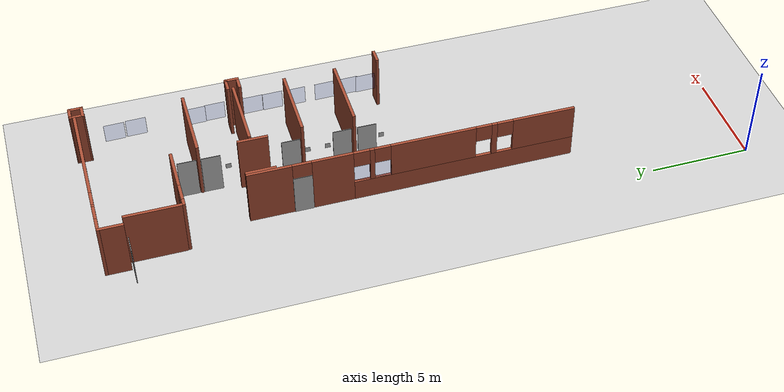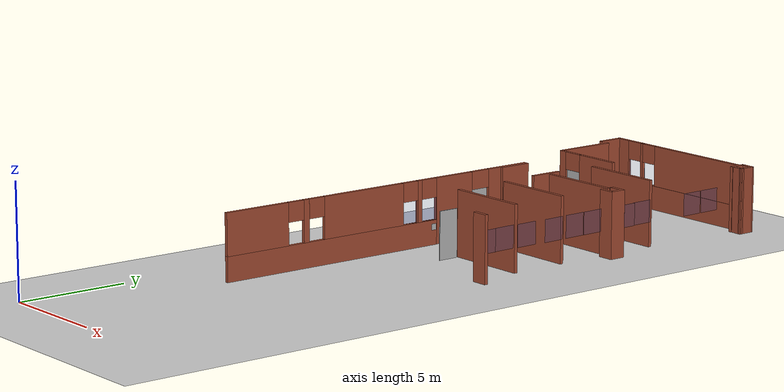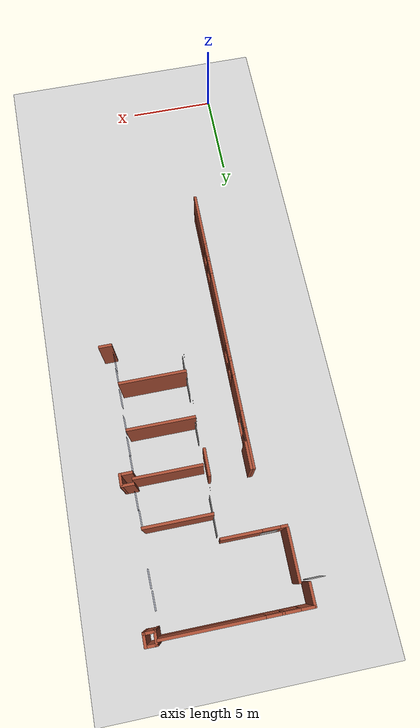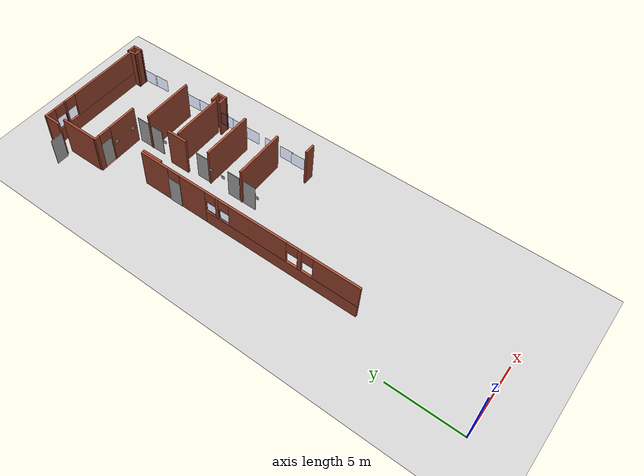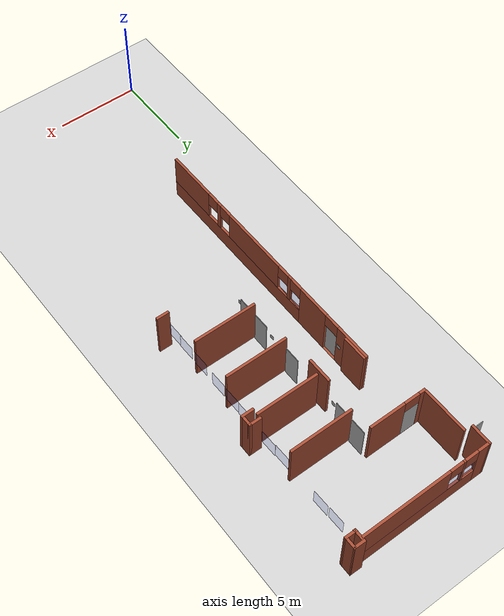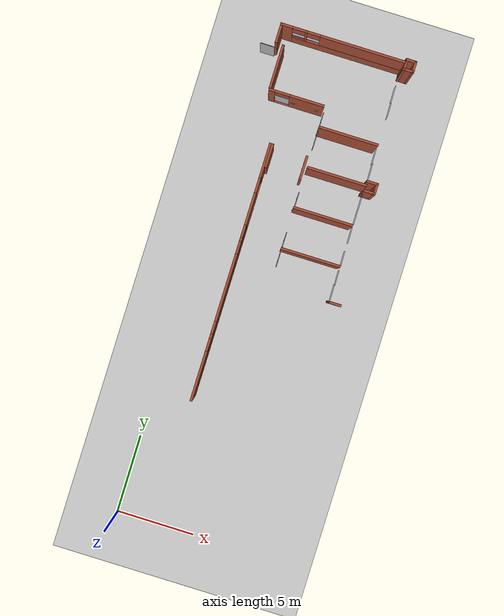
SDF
<sdf version="1.6">
 <world name="default">
  <model name="ground_plane">
   <static>1</static>
   <link name="link">
    <collision name="collision">
     <geometry><plane><normal>0 0 1</normal><size>100 100</size></plane></geometry>
     <surface><friction><ode><mu>100</mu><mu2>50</mu2></ode></friction></surface>
    </collision>
    <visual name="visual">
     <cast_shadows>0</cast_shadows>
     <geometry><plane><normal>0 0 1</normal><size>100 100</size></plane></geometry>
     <material>
      <script><uri>file://media/materials/scripts/gazebo.material</uri><name>Gazebo/Grey</name></script>
     </material>
    </visual>
   </link>
  </model>
  <model name="UNFRGS_INF_-_Predio_73">
   <pose>-0.02513 1.0401 -0.009 0 -0 0</pose>
   <link name="Wall_103">
    <collision name="Wall_103_Collision">
     <geometry><box><size>1.5 0.15 2.96</size></box></geometry>
     <pose>0 0 1.48 0 -0 0</pose>
    </collision>
    <visual name="Wall_103_Visual">
     <pose>0 0 1.48 0 -0 0</pose>
     <geometry><box><size>1.5 0.15 2.96</size></box></geometry>
     <material>
      <script><uri>file://media/materials/scripts/gazebo.material</uri><name>Gazebo/Bricks</name></script>
      <ambient>0.929412 1 0.760784 1</ambient>
     </material>
     <meta><layer>0</layer></meta>
    </visual>
    <pose>2.64587 22.8868 0 0 0 -1.5708</pose>
   </link>
   <link name="Wall_108">
    <collision name="Wall_108_Collision">
     <geometry><box><size>3.75 0.15 2.96</size></box></geometry>
     <pose>0 0 1.48 0 -0 0</pose>
    </collision>
    <visual name="Wall_108_Visual">
     <pose>0 0 1.48 0 -0 0</pose>
     <geometry><box><size>3.75 0.15 2.96</size></box></geometry>
     <material>
      <script><uri>file://media/materials/scripts/gazebo.material</uri><name>Gazebo/Bricks</name></script>
      <ambient>0.929412 1 0.760784 1</ambient>
     </material>
     <meta><layer>0</layer></meta>
    </visual>
    <pose>6.83287 20.3518 0 0 -0 0</pose>
   </link>
   <link name="Wall_24">
    <pose>4.89787 30.6793 0 0 0 -0.000129</pose>
    <visual name="Wall_24_Visual_0">
     <pose>-3.55658 0 1.48 0 -0 0</pose>
     <geometry><box><size>0.777446 0.15 2.96</size></box></geometry>
     <material>
      <script><uri>file://media/materials/scripts/gazebo.material</uri><name>Gazebo/Bricks</name></script>
      <ambient>0.929412 1 0.760784 1</ambient>
     </material>
     <meta><layer>0</layer></meta>
    </visual>
    <collision name="Wall_24_Collision_0">
     <geometry><box><size>0.777446 0.15 2.96</size></box></geometry>
     <pose>-3.55658 0 1.48 0 -0 0</pose>
    </collision>
    <visual name="Wall_24_Visual_1">
     <pose>0.388723 0 0.55 0 -0 0</pose>
     <geometry><box><size>7.11316 0.15 1.11</size></box></geometry>
     <material>
      <script><uri>file://media/materials/scripts/gazebo.material</uri><name>Gazebo/Bricks</name></script>
      <ambient>0.929412 1 0.760784 1</ambient>
     </material>
     <meta><layer>0</layer></meta>
    </visual>
    <collision name="Wall_24_Collision_1">
     <geometry><box><size>7.11316 0.15 1.11</size></box></geometry>
     <pose>0.388723 0 0.55 0 -0 0</pose>
    </collision>
    <visual name="Wall_24_Visual_2">
     <pose>-2.29756 0 2.03 0 -0 0</pose>
     <geometry><box><size>0.140598 0.15 1.86</size></box></geometry>
     <material>
      <script><uri>file://media/materials/scripts/gazebo.material</uri><name>Gazebo/Bricks</name></script>
      <ambient>0.929412 1 0.760784 1</ambient>
     </material>
     <meta><layer>0</layer></meta>
    </visual>
    <collision name="Wall_24_Collision_2">
     <geometry><box><size>0.140598 0.15 1.86</size></box></geometry>
     <pose>-2.29756 0 2.03 0 -0 0</pose>
    </collision>
    <visual name="Wall_24_Visual_3">
     <pose>1.25902 0 2.03 0 -0 0</pose>
     <geometry><box><size>5.37257 0.15 1.86</size></box></geometry>
     <material>
      <script><uri>file://media/materials/scripts/gazebo.material</uri><name>Gazebo/Bricks</name></script>
      <ambient>0.929412 1 0.760784 1</ambient>
     </material>
     <meta><layer>0</layer></meta>
    </visual>
    <collision name="Wall_24_Collision_3">
     <geometry><box><size>5.37257 0.15 1.86</size></box></geometry>
     <pose>1.25902 0 2.03 0 -0 0</pose>
    </collision>
    <visual name="Wall_24_Visual_4">
     <pose>-2.76786 0 2.53 0 -0 0</pose>
     <geometry><box><size>0.8 0.15 0.86</size></box></geometry>
     <material>
      <script><uri>file://media/materials/scripts/gazebo.material</uri><name>Gazebo/Bricks</name></script>
      <ambient>0.929412 1 0.760784 1</ambient>
     </material>
     <meta><layer>0</layer></meta>
    </visual>
    <collision name="Wall_24_Collision_4">
     <geometry><box><size>0.8 0.15 0.86</size></box></geometry>
     <pose>-2.76786 0 2.53 0 -0 0</pose>
    </collision>
    <visual name="Wall_24_Visual_5">
     <pose>-1.82726 0 2.53 0 -0 0</pose>
     <geometry><box><size>0.8 0.15 0.86</size></box></geometry>
     <material>
      <script><uri>file://media/materials/scripts/gazebo.material</uri><name>Gazebo/Bricks</name></script>
      <ambient>0.929412 1 0.760784 1</ambient>
     </material>
     <meta><layer>0</layer></meta>
    </visual>
    <collision name="Wall_24_Collision_5">
     <geometry><box><size>0.8 0.15 0.86</size></box></geometry>
     <pose>-1.82726 0 2.53 0 -0 0</pose>
    </collision>
   </link>
   <link name="Wall_248">
    <collision name="Wall_248_Collision">
     <geometry><box><size>3.75 0.15 2.96</size></box></geometry>
     <pose>0 0 1.48 0 -0 0</pose>
    </collision>
    <visual name="Wall_248_Visual">
     <pose>0 0 1.48 0 -0 0</pose>
     <geometry><box><size>3.75 0.15 2.96</size></box></geometry>
     <material>
      <script><uri>file://media/materials/scripts/gazebo.material</uri><name>Gazebo/Bricks</name></script>
      <ambient>0.929412 1 0.760784 1</ambient>
     </material>
     <meta><layer>0</layer></meta>
    </visual>
    <pose>6.84587 17.7748 0 0 -0 0</pose>
   </link>
   <link name="Wall_54">
    <collision name="Wall_54_Collision">
     <geometry><box><size>1.25 0.15 2.96</size></box></geometry>
     <pose>0 0 1.48 0 -0 0</pose>
    </collision>
    <visual name="Wall_54_Visual">
     <pose>0 0 1.48 0 -0 0</pose>
     <geometry><box><size>1.25 0.15 2.96</size></box></geometry>
     <material>
      <script><uri>file://media/materials/scripts/gazebo.material</uri><name>Gazebo/Bricks</name></script>
      <ambient>0.929412 1 0.760784 1</ambient>
     </material>
     <meta><layer>0</layer></meta>
    </visual>
    <pose>1.02787 30.1298 0 0 0 -1.5708</pose>
   </link>
   <link name="Wall_56">
    <collision name="Wall_56_Collision">
     <geometry><box><size>2.73371 0.15 2.96</size></box></geometry>
     <pose>0 0 1.48 0 -0 0</pose>
    </collision>
    <visual name="Wall_56_Visual">
     <pose>0 0 1.48 0 -0 0</pose>
     <geometry><box><size>2.73371 0.15 2.96</size></box></geometry>
     <material>
      <script><uri>file://media/materials/scripts/gazebo.material</uri><name>Gazebo/Bricks</name></script>
      <ambient>0.929412 1 0.760784 1</ambient>
     </material>
     <meta><layer>0</layer></meta>
    </visual>
    <pose>1.49287 28.1498 0 0 0 -1.5708</pose>
   </link>
   <link name="Wall_62">
    <pose>3.19587 26.7078 0 0 -0 3.14159</pose>
    <visual name="Wall_62_Visual_0">
     <pose>-0.659421 0 1.48 0 -0 0</pose>
     <geometry><box><size>2.18116 0.15 2.96</size></box></geometry>
     <material>
      <script><uri>file://media/materials/scripts/gazebo.material</uri><name>Gazebo/Bricks</name></script>
      <ambient>0.929412 1 0.760784 1</ambient>
     </material>
     <meta><layer>0</layer></meta>
    </visual>
    <collision name="Wall_62_Collision_0">
     <geometry><box><size>2.18116 0.15 2.96</size></box></geometry>
     <pose>-0.659421 0 1.48 0 -0 0</pose>
    </collision>
    <visual name="Wall_62_Visual_1">
     <pose>1.55558 0 1.48 0 -0 0</pose>
     <geometry><box><size>0.388843 0.15 2.96</size></box></geometry>
     <material>
      <script><uri>file://media/materials/scripts/gazebo.material</uri><name>Gazebo/Bricks</name></script>
      <ambient>0.929412 1 0.760784 1</ambient>
     </material>
     <meta><layer>0</layer></meta>
    </visual>
    <collision name="Wall_62_Collision_1">
     <geometry><box><size>0.388843 0.15 2.96</size></box></geometry>
     <pose>1.55558 0 1.48 0 -0 0</pose>
    </collision>
    <visual name="Wall_62_Visual_2">
     <pose>0.896157 0 0 0 -0 0</pose>
     <geometry><box><size>0.93 0.15 0.001</size></box></geometry>
     <material>
      <script><uri>file://media/materials/scripts/gazebo.material</uri><name>Gazebo/Bricks</name></script>
      <ambient>0.929412 1 0.760784 1</ambient>
     </material>
     <meta><layer>0</layer></meta>
    </visual>
    <collision name="Wall_62_Collision_2">
     <geometry><box><size>0.93 0.15 0.001</size></box></geometry>
     <pose>0.896157 0 0 0 -0 0</pose>
    </collision>
    <visual name="Wall_62_Visual_3">
     <pose>0.896157 0 2.555 0 -0 0</pose>
     <geometry><box><size>0.93 0.15 0.81</size></box></geometry>
     <material>
      <script><uri>file://media/materials/scripts/gazebo.material</uri><name>Gazebo/Bricks</name></script>
      <ambient>0.929412 1 0.760784 1</ambient>
     </material>
     <meta><layer>0</layer></meta>
    </visual>
    <collision name="Wall_62_Collision_3">
     <geometry><box><size>0.93 0.15 0.81</size></box></geometry>
     <pose>0.896157 0 2.555 0 -0 0</pose>
    </collision>
   </link>
   <link name="Wall_68">
    <pose>2.50887 15.5118 0 0 0 -1.5708</pose>
    <visual name="Wall_68_Visual_0">
     <pose>-7.03096 0 1.48 0 -0 0</pose>
     <geometry><box><size>2.18808 0.15 2.96</size></box></geometry>
     <material>
      <script><uri>file://media/materials/scripts/gazebo.material</uri><name>Gazebo/Bricks</name></script>
      <ambient>0.929412 1 0.760784 1</ambient>
     </material>
     <meta><layer>0</layer></meta>
    </visual>
    <collision name="Wall_68_Collision_0">
     <geometry><box><size>2.18808 0.15 2.96</size></box></geometry>
     <pose>-7.03096 0 1.48 0 -0 0</pose>
    </collision>
    <visual name="Wall_68_Visual_1">
     <pose>-3.9858 0 1.48 0 -0 0</pose>
     <geometry><box><size>2.02224 0.15 2.96</size></box></geometry>
     <material>
      <script><uri>file://media/materials/scripts/gazebo.material</uri><name>Gazebo/Bricks</name></script>
      <ambient>0.929412 1 0.760784 1</ambient>
     </material>
     <meta><layer>0</layer></meta>
    </visual>
    <collision name="Wall_68_Collision_1">
     <geometry><box><size>2.02224 0.15 2.96</size></box></geometry>
     <pose>-3.9858 0 1.48 0 -0 0</pose>
    </collision>
    <visual name="Wall_68_Visual_2">
     <pose>-5.46692 0 0 0 -0 0</pose>
     <geometry><box><size>0.94 0.15 0.001</size></box></geometry>
     <material>
      <script><uri>file://media/materials/scripts/gazebo.material</uri><name>Gazebo/Bricks</name></script>
      <ambient>0.929412 1 0.760784 1</ambient>
     </material>
     <meta><layer>0</layer></meta>
    </visual>
    <collision name="Wall_68_Collision_2">
     <geometry><box><size>0.94 0.15 0.001</size></box></geometry>
     <pose>-5.46692 0 0 0 -0 0</pose>
    </collision>
    <visual name="Wall_68_Visual_3">
     <pose>2.57516 0 0.55 0 -0 0</pose>
     <geometry><box><size>11.0997 0.15 1.11</size></box></geometry>
     <material>
      <script><uri>file://media/materials/scripts/gazebo.material</uri><name>Gazebo/Bricks</name></script>
      <ambient>0.929412 1 0.760784 1</ambient>
     </material>
     <meta><layer>0</layer></meta>
    </visual>
    <collision name="Wall_68_Collision_3">
     <geometry><box><size>11.0997 0.15 1.11</size></box></geometry>
     <pose>2.57516 0 0.55 0 -0 0</pose>
    </collision>
    <visual name="Wall_68_Visual_4">
     <pose>-2.06048 0 2.03 0 -0 0</pose>
     <geometry><box><size>0.228404 0.15 1.86</size></box></geometry>
     <material>
      <script><uri>file://media/materials/scripts/gazebo.material</uri><name>Gazebo/Bricks</name></script>
      <ambient>0.929412 1 0.760784 1</ambient>
     </material>
     <meta><layer>0</layer></meta>
    </visual>
    <collision name="Wall_68_Collision_4">
     <geometry><box><size>0.228404 0.15 1.86</size></box></geometry>
     <pose>-2.06048 0 2.03 0 -0 0</pose>
    </collision>
    <visual name="Wall_68_Visual_5">
     <pose>0.976903 0 2.03 0 -0 0</pose>
     <geometry><box><size>4.24636 0.15 1.86</size></box></geometry>
     <material>
      <script><uri>file://media/materials/scripts/gazebo.material</uri><name>Gazebo/Bricks</name></script>
      <ambient>0.929412 1 0.760784 1</ambient>
     </material>
     <meta><layer>0</layer></meta>
    </visual>
    <collision name="Wall_68_Collision_5">
     <geometry><box><size>4.24636 0.15 1.86</size></box></geometry>
     <pose>0.976903 0 2.03 0 -0 0</pose>
    </collision>
    <visual name="Wall_68_Visual_6">
     <pose>4.0382 0 2.03 0 -0 0</pose>
     <geometry><box><size>0.276238 0.15 1.86</size></box></geometry>
     <material>
      <script><uri>file://media/materials/scripts/gazebo.material</uri><name>Gazebo/Bricks</name></script>
      <ambient>0.929412 1 0.760784 1</ambient>
     </material>
     <meta><layer>0</layer></meta>
    </visual>
    <collision name="Wall_68_Collision_6">
     <geometry><box><size>0.276238 0.15 1.86</size></box></geometry>
     <pose>4.0382 0 2.03 0 -0 0</pose>
    </collision>
    <visual name="Wall_68_Visual_7">
     <pose>6.55066 0 2.03 0 -0 0</pose>
     <geometry><box><size>3.14868 0.15 1.86</size></box></geometry>
     <material>
      <script><uri>file://media/materials/scripts/gazebo.material</uri><name>Gazebo/Bricks</name></script>
      <ambient>0.929412 1 0.760784 1</ambient>
     </material>
     <meta><layer>0</layer></meta>
    </visual>
    <collision name="Wall_68_Collision_7">
     <geometry><box><size>3.14868 0.15 1.86</size></box></geometry>
     <pose>6.55066 0 2.03 0 -0 0</pose>
    </collision>
    <visual name="Wall_68_Visual_8">
     <pose>-2.57468 0 2.53 0 -0 0</pose>
     <geometry><box><size>0.8 0.15 0.86</size></box></geometry>
     <material>
      <script><uri>file://media/materials/scripts/gazebo.material</uri><name>Gazebo/Bricks</name></script>
      <ambient>0.929412 1 0.760784 1</ambient>
     </material>
     <meta><layer>0</layer></meta>
    </visual>
    <collision name="Wall_68_Collision_8">
     <geometry><box><size>0.8 0.15 0.86</size></box></geometry>
     <pose>-2.57468 0 2.53 0 -0 0</pose>
    </collision>
    <visual name="Wall_68_Visual_9">
     <pose>-1.54628 0 2.53 0 -0 0</pose>
     <geometry><box><size>0.8 0.15 0.86</size></box></geometry>
     <material>
      <script><uri>file://media/materials/scripts/gazebo.material</uri><name>Gazebo/Bricks</name></script>
      <ambient>0.929412 1 0.760784 1</ambient>
     </material>
     <meta><layer>0</layer></meta>
    </visual>
    <collision name="Wall_68_Collision_9">
     <geometry><box><size>0.8 0.15 0.86</size></box></geometry>
     <pose>-1.54628 0 2.53 0 -0 0</pose>
    </collision>
    <visual name="Wall_68_Visual_10">
     <pose>3.50008 0 2.53 0 -0 0</pose>
     <geometry><box><size>0.8 0.15 0.86</size></box></geometry>
     <material>
      <script><uri>file://media/materials/scripts/gazebo.material</uri><name>Gazebo/Bricks</name></script>
      <ambient>0.929412 1 0.760784 1</ambient>
     </material>
     <meta><layer>0</layer></meta>
    </visual>
    <collision name="Wall_68_Collision_10">
     <geometry><box><size>0.8 0.15 0.86</size></box></geometry>
     <pose>3.50008 0 2.53 0 -0 0</pose>
    </collision>
    <visual name="Wall_68_Visual_11">
     <pose>4.57632 0 2.53 0 -0 0</pose>
     <geometry><box><size>0.8 0.15 0.86</size></box></geometry>
     <material>
      <script><uri>file://media/materials/scripts/gazebo.material</uri><name>Gazebo/Bricks</name></script>
      <ambient>0.929412 1 0.760784 1</ambient>
     </material>
     <meta><layer>0</layer></meta>
    </visual>
    <collision name="Wall_68_Collision_11">
     <geometry><box><size>0.8 0.15 0.86</size></box></geometry>
     <pose>4.57632 0 2.53 0 -0 0</pose>
    </collision>
    <visual name="Wall_68_Visual_12">
     <pose>-5.46692 0 2.555 0 -0 0</pose>
     <geometry><box><size>0.94 0.15 0.81</size></box></geometry>
     <material>
      <script><uri>file://media/materials/scripts/gazebo.material</uri><name>Gazebo/Bricks</name></script>
      <ambient>0.929412 1 0.760784 1</ambient>
     </material>
     <meta><layer>0</layer></meta>
    </visual>
    <collision name="Wall_68_Collision_12">
     <geometry><box><size>0.94 0.15 0.81</size></box></geometry>
     <pose>-5.46692 0 2.555 0 -0 0</pose>
    </collision>
   </link>
   <link name="Wall_708">
    <collision name="Wall_708_Collision">
     <geometry><box><size>0.75 0.15 2.96</size></box></geometry>
     <pose>0 0 1.48 0 -0 0</pose>
    </collision>
    <visual name="Wall_708_Visual">
     <pose>0 0 1.48 0 -0 0</pose>
     <geometry><box><size>0.75 0.15 2.96</size></box></geometry>
     <material>
      <script><uri>file://media/materials/scripts/gazebo.material</uri><name>Gazebo/Bricks</name></script>
      <ambient>0.498039 0.498039 0.498039 1</ambient>
     </material>
     <meta><layer>0</layer></meta>
    </visual>
    <pose>9.09287 15.5368 0 0 -0 0</pose>
   </link>
   <link name="Wall_716">
    <collision name="Wall_716_Collision">
     <geometry><box><size>0.75 0.15 2.96</size></box></geometry>
     <pose>0 0 1.48 0 -0 0</pose>
    </collision>
    <visual name="Wall_716_Visual">
     <pose>0 0 1.48 0 -0 0</pose>
     <geometry><box><size>0.75 0.15 2.96</size></box></geometry>
     <material>
      <script><uri>file://media/materials/scripts/gazebo.material</uri><name>Gazebo/Bricks</name></script>
      <ambient>0.498039 0.498039 0.498039 1</ambient>
     </material>
     <meta><layer>0</layer></meta>
    </visual>
    <pose>9.07887 23.1608 0 0 -0 0</pose>
   </link>
   <link name="Wall_717">
    <collision name="Wall_717_Collision">
     <geometry><box><size>0.736 0.15 2.96</size></box></geometry>
     <pose>0 0 1.48 0 -0 0</pose>
    </collision>
    <visual name="Wall_717_Visual">
     <pose>0 0 1.48 0 -0 0</pose>
     <geometry><box><size>0.736 0.15 2.96</size></box></geometry>
     <material>
      <script><uri>file://media/materials/scripts/gazebo.material</uri><name>Gazebo/Bricks</name></script>
      <ambient>0.498039 0.498039 0.498039 1</ambient>
     </material>
     <meta><layer>0</layer></meta>
    </visual>
    <pose>9.37887 22.8678 0 0 0 -1.5708</pose>
   </link>
   <link name="Wall_718">
    <collision name="Wall_718_Collision">
     <geometry><box><size>0.75 0.15 2.96</size></box></geometry>
     <pose>0 0 1.48 0 -0 0</pose>
    </collision>
    <visual name="Wall_718_Visual">
     <pose>0 0 1.48 0 -0 0</pose>
     <geometry><box><size>0.75 0.15 2.96</size></box></geometry>
     <material>
      <script><uri>file://media/materials/scripts/gazebo.material</uri><name>Gazebo/Bricks</name></script>
      <ambient>0.498039 0.498039 0.498039 1</ambient>
     </material>
     <meta><layer>0</layer></meta>
    </visual>
    <pose>9.07887 22.5748 0 0 -0 3.14159</pose>
   </link>
   <link name="Wall_724">
    <collision name="Wall_724_Collision">
     <geometry><box><size>0.699401 0.15 2.96</size></box></geometry>
     <pose>0 0 1.48 0 -0 0</pose>
    </collision>
    <visual name="Wall_724_Visual">
     <pose>0 0 1.48 0 -0 0</pose>
     <geometry><box><size>0.699401 0.15 2.96</size></box></geometry>
     <material>
      <script><uri>file://media/materials/scripts/gazebo.material</uri><name>Gazebo/Bricks</name></script>
      <ambient>0.498039 0.498039 0.498039 1</ambient>
     </material>
     <meta><layer>0</layer></meta>
    </visual>
    <pose>9.14619 30.2606 0 0 0 -0.013743</pose>
   </link>
   <link name="Wall_725">
    <collision name="Wall_725_Collision">
     <geometry><box><size>0.750436 0.15 2.96</size></box></geometry>
     <pose>0 0 1.48 0 -0 0</pose>
    </collision>
    <visual name="Wall_725_Visual">
     <pose>0 0 1.48 0 -0 0</pose>
     <geometry><box><size>0.750436 0.15 2.96</size></box></geometry>
     <material>
      <script><uri>file://media/materials/scripts/gazebo.material</uri><name>Gazebo/Bricks</name></script>
      <ambient>0.498039 0.498039 0.498039 1</ambient>
     </material>
     <meta><layer>0</layer></meta>
    </visual>
    <pose>9.42087 30.5573 0 0 -0 1.5708</pose>
   </link>
   <link name="Wall_726">
    <collision name="Wall_726_Collision">
     <geometry><box><size>0.699388 0.15 2.96</size></box></geometry>
     <pose>0 0 1.48 0 -0 0</pose>
    </collision>
    <visual name="Wall_726_Visual">
     <pose>0 0 1.48 0 -0 0</pose>
     <geometry><box><size>0.699388 0.15 2.96</size></box></geometry>
     <material>
      <script><uri>file://media/materials/scripts/gazebo.material</uri><name>Gazebo/Bricks</name></script>
      <ambient>0.498039 0.498039 0.498039 1</ambient>
     </material>
     <meta><layer>0</layer></meta>
    </visual>
    <pose>9.14619 30.8611 0 0 -0 3.12967</pose>
   </link>
   <link name="Wall_727">
    <collision name="Wall_727_Collision">
     <geometry><box><size>0.75 0.15 2.96</size></box></geometry>
     <pose>0 0 1.48 0 -0 0</pose>
    </collision>
    <visual name="Wall_727_Visual">
     <pose>0 0 1.48 0 -0 0</pose>
     <geometry><box><size>0.75 0.15 2.96</size></box></geometry>
     <material>
      <script><uri>file://media/materials/scripts/gazebo.material</uri><name>Gazebo/Bricks</name></script>
      <ambient>0.498039 0.498039 0.498039 1</ambient>
     </material>
     <meta><layer>0</layer></meta>
    </visual>
    <pose>8.87152 30.5428 0 0 0 -1.5708</pose>
   </link>
   <link name="Wall_87">
    <collision name="Wall_87_Collision">
     <geometry><box><size>3.75 0.15 2.96</size></box></geometry>
     <pose>0 0 1.48 0 -0 0</pose>
    </collision>
    <visual name="Wall_87_Visual">
     <pose>0 0 1.48 0 -0 0</pose>
     <geometry><box><size>3.75 0.15 2.96</size></box></geometry>
     <material>
      <script><uri>file://media/materials/scripts/gazebo.material</uri><name>Gazebo/Bricks</name></script>
      <ambient>0.929412 1 0.760784 1</ambient>
     </material>
     <meta><layer>0</layer></meta>
    </visual>
    <pose>6.85987 25.4278 0 0 -0 0</pose>
   </link>
   <link name="Wall_91">
    <collision name="Wall_91_Collision">
     <geometry><box><size>3.75 0.15 2.96</size></box></geometry>
     <pose>0 0 1.48 0 -0 0</pose>
    </collision>
    <visual name="Wall_91_Visual">
     <pose>0 0 1.48 0 -0 0</pose>
     <geometry><box><size>3.75 0.15 2.96</size></box></geometry>
     <material>
      <script><uri>file://media/materials/scripts/gazebo.material</uri><name>Gazebo/Bricks</name></script>
      <ambient>0.929412 1 0.760784 1</ambient>
     </material>
     <meta><layer>0</layer></meta>
    </visual>
    <pose>6.91487 22.9038 0 0 -0 0</pose>
   </link>
   <link name="Wall_98">
    <collision name="Wall_98_Collision">
     <geometry><box><size>1.5 0.15 2.96</size></box></geometry>
     <pose>0 0 1.48 0 -0 0</pose>
    </collision>
    <visual name="Wall_98_Visual">
     <pose>0 0 1.48 0 -0 0</pose>
     <geometry><box><size>1.5 0.15 2.96</size></box></geometry>
     <material>
      <script><uri>file://media/materials/scripts/gazebo.material</uri><name>Gazebo/Bricks</name></script>
      <ambient>0.929412 1 0.760784 1</ambient>
     </material>
     <meta><layer>0</layer></meta>
    </visual>
    <pose>4.84087 22.8048 0 0 0 -1.5708</pose>
   </link>
   <static>1</static>
  </model>
  <model name="placa_201">
   <pose>3.01035 27.6362 1.48208 0 -0 0</pose>
   <static>1</static>
   <link name="link">
    <collision name="collision"><geometry><box><size>0.268 0.001 0.268</size></box></geometry></collision>
    <visual name="visual">
     <geometry><box><size>0.268 0.001 0.268</size></box></geometry>
     <material>
      <script>
       <uri>model://Placa_201/Materials/Scripts</uri>
       <uri>model://Placa_201/Materials/Textures</uri>
       <name>TexturaPlaca_201/Image</name>
      </script>
     </material>
    </visual>
   </link>
  </model>
  <model name="placa_203">
   <pose>4.5 27.6362 1.48208 0 -0 0</pose>
   <static>1</static>
   <link name="link">
    <collision name="collision"><geometry><box><size>0.268 0.001 0.268</size></box></geometry></collision>
    <visual name="visual">
     <geometry><box><size>0.268 0.001 0.268</size></box></geometry>
     <material>
      <script>
       <uri>model://Placa_203/Materials/Scripts</uri>
       <uri>model://Placa_203/Materials/Textures</uri>
       <name>TexturaPlaca_203/Image</name>
      </script>
     </material>
    </visual>
   </link>
  </model>
  <model name="placa_205">
   <pose>4.88 25.1 1.48209 0 -0 1.57</pose>
   <static>1</static>
   <link name="link">
    <collision name="collision"><geometry><box><size>0.268 0.001 0.268</size></box></geometry></collision>
    <visual name="visual">
     <geometry><box><size>0.268 0.001 0.268</size></box></geometry>
     <material>
      <script>
       <uri>model://Placa_205/Materials/Scripts</uri>
       <uri>model://Placa_205/Materials/Textures</uri>
       <name>TexturaPlaca_205/Image</name>
      </script>
     </material>
    </visual>
   </link>
  </model>
  <model name="placa_207">
   <pose>4.88 21.2 1.48209 0 -0 1.57</pose>
   <static>1</static>
   <link name="link">
    <collision name="collision"><geometry><box><size>0.268 0.001 0.268</size></box></geometry></collision>
    <visual name="visual">
     <geometry><box><size>0.268 0.001 0.268</size></box></geometry>
     <material>
      <script>
       <uri>model://Placa_207/Materials/Scripts</uri>
       <uri>model://Placa_207/Materials/Textures</uri>
       <name>TexturaPlaca_207/Image</name>
      </script>
     </material>
    </visual>
   </link>
  </model>
  <model name="placa_209">
   <pose>2.559 22.7 1.48209 0 -0 1.57</pose>
   <static>1</static>
   <link name="link">
    <collision name="collision"><geometry><box><size>0.268 0.001 0.268</size></box></geometry></collision>
    <visual name="visual">
     <geometry><box><size>0.268 0.001 0.268</size></box></geometry>
     <material>
      <script>
       <uri>model://Placa_209/Materials/Scripts</uri>
       <uri>model://Placa_209/Materials/Textures</uri>
       <name>TexturaPlaca_209/Image</name>
      </script>
     </material>
    </visual>
   </link>
  </model>
  <model name="placa_211">
   <pose>4.88 20.2004 1.48209 0 -0 1.57</pose>
   <static>1</static>
   <link name="link">
    <collision name="collision"><geometry><box><size>0.268 0.001 0.268</size></box></geometry></collision>
    <visual name="visual">
     <geometry><box><size>0.268 0.001 0.268</size></box></geometry>
     <material>
      <script>
       <uri>model://Placa_211/Materials/Scripts</uri>
       <uri>model://Placa_211/Materials/Textures</uri>
       <name>TexturaPlaca_211/Image</name>
      </script>
     </material>
    </visual>
   </link>
  </model>
  <model name="placa_213">
   <pose>4.88 17.5004 1.48209 0 -0 1.57</pose>
   <static>1</static>
   <link name="link">
    <collision name="collision"><geometry><box><size>0.268 0.001 0.268</size></box></geometry></collision>
    <visual name="visual">
     <geometry><box><size>0.268 0.001 0.268</size></box></geometry>
     <material>
      <script>
       <uri>model://Placa_213/Materials/Scripts</uri>
       <uri>model://Placa_213/Materials/Textures</uri>
       <name>TexturaPlaca_213/Image</name>
      </script>
     </material>
    </visual>
   </link>
  </model>
  <model name="PortaInternaDireita_14">
   <pose>5 18.19 1.075 0 -0 1.57</pose>
   <static>1</static>
   <link name="link">
    <collision name="collision"><geometry><box><size>2.15 3.5 0.94</size></box></geometry></collision>
    <visual name="visual">
     <geometry><box><size>0.94 0.035 2.15</size></box></geometry>
     <material>
      <script>
       <uri>model://PortaInternaDireita/materials/scripts</uri>
       <uri>model://PortaInternaDireita/materials/textures</uri>
       <name>TexturaPortaInternaDireita/Image</name>
      </script>
     </material>
    </visual>
   </link>
  </model>
  <model name="PortaInternaEsquerda_19">
   <pose>5 19.43 1.075 0 -0 1.57</pose>
   <static>1</static>
   <link name="link">
    <collision name="collision"><geometry><box><size>2.15 3.5 0.94</size></box></geometry></collision>
    <visual name="visual">
     <geometry><box><size>0.94 0.035 2.15</size></box></geometry>
     <material>
      <script>
       <uri>model://PortaInternaEsquerda/materials/scripts</uri>
       <uri>model://PortaInternaEsquerda/materials/textures</uri>
       <name>TexturaPortaInternaEsquerda/Image</name>
      </script>
     </material>
    </visual>
   </link>
  </model>
  <model name="PortaInternaEsquerda_20">
   <pose>5 21.98 1.075 0 -0 1.57</pose>
   <static>1</static>
   <link name="link">
    <collision name="collision"><geometry><box><size>2.15 3.5 0.94</size></box></geometry></collision>
    <visual name="visual">
     <geometry><box><size>0.94 0.035 2.15</size></box></geometry>
     <material>
      <script>
       <uri>model://PortaInternaEsquerda/materials/scripts</uri>
       <uri>model://PortaInternaEsquerda/materials/textures</uri>
       <name>TexturaPortaInternaEsquerda/Image</name>
      </script>
     </material>
    </visual>
   </link>
  </model>
  <model name="PortaInternaDireita_15">
   <pose>5 25.9 1.075 0 -0 1.57</pose>
   <static>1</static>
   <link name="link">
    <collision name="collision"><geometry><box><size>2.15 3.5 0.94</size></box></geometry></collision>
    <visual name="visual">
     <geometry><box><size>0.94 0.035 2.15</size></box></geometry>
     <material>
      <script>
       <uri>model://PortaInternaDireita/materials/scripts</uri>
       <uri>model://PortaInternaDireita/materials/textures</uri>
       <name>TexturaPortaInternaDireita/Image</name>
      </script>
     </material>
    </visual>
   </link>
  </model>
  <model name="PortaInternaEsquerda_21">
   <pose>5 27.05 1.075 0 -0 1.57</pose>
   <static>1</static>
   <link name="link">
    <collision name="collision"><geometry><box><size>2.15 3.5 0.94</size></box></geometry></collision>
    <visual name="visual">
     <geometry><box><size>0.94 0.035 2.15</size></box></geometry>
     <material>
      <script>
       <uri>model://PortaInternaEsquerda/materials/scripts</uri>
       <uri>model://PortaInternaEsquerda/materials/textures</uri>
       <name>TexturaPortaInternaEsquerda/Image</name>
      </script>
     </material>
    </visual>
   </link>
  </model>
  <model name="PortaInternaDireita_16">
   <pose>2.27 27.8 1.075 0 -0 0</pose>
   <static>1</static>
   <link name="link">
    <collision name="collision"><geometry><box><size>2.15 3.5 0.94</size></box></geometry></collision>
    <visual name="visual">
     <geometry><box><size>0.94 0.035 2.15</size></box></geometry>
     <material>
      <script>
       <uri>model://PortaInternaDireita/materials/scripts</uri>
       <uri>model://PortaInternaDireita/materials/textures</uri>
       <name>TexturaPortaInternaDireita/Image</name>
      </script>
     </material>
    </visual>
   </link>
  </model>
  <model name="PortaInternaEsquerda_26">
   <pose>2.4 22.02 1.075 0 -0 1.57</pose>
   <static>1</static>
   <link name="link">
    <collision name="collision"><geometry><box><size>2.15 3.5 0.94</size></box></geometry></collision>
    <visual name="visual">
     <geometry><box><size>0.94 0.035 2.15</size></box></geometry>
     <material>
      <script>
       <uri>model://PortaInternaEsquerda/materials/scripts</uri>
       <uri>model://PortaInternaEsquerda/materials/textures</uri>
       <name>TexturaPortaInternaEsquerda/Image</name>
      </script>
     </material>
    </visual>
   </link>
  </model>
  <model name="PortaExternaEsquerda_g_0">
   <pose>0.486608 30.4597 1.07896 0 -0 0</pose>
   <static>1</static>
   <link name="link">
    <collision name="collision"><geometry><box><size>2.15 3.5 0.9</size></box></geometry></collision>
    <visual name="visual">
     <geometry><box><size>0.9 0.035 2.15</size></box></geometry>
     <material>
      <script>
       <uri>model://PortaExternaEsquerda/materials/scripts</uri>
       <uri>model://PortaExternaEsquerda/materials/textures</uri>
       <name>TexturaPortaExternaEsquerda/Image</name>
      </script>
     </material>
    </visual>
   </link>
  </model>
  <model name="vidro">
   <pose>3.04212 31.78 0.35946 0 -0 0</pose>
   <link name="Wall_2">
    <collision name="Wall_2_Collision">
     <geometry><box><size>1 0.001 1</size></box></geometry>
     <pose>0 0 1.25 0 -0 0</pose>
    </collision>
    <visual name="Wall_2_Visual">
     <pose>0 0 1.25 0 -0 0</pose>
     <transparency>0.8</transparency>
     <geometry><box><size>1 0.001 1</size></box></geometry>
     <material>
      <script><uri>file://media/materials/scripts/gazebo.material</uri><name>Gazebo/BlueTransparent</name></script>
      <ambient>0.1 0.1 0.1 0.1</ambient>
     </material>
     <meta><layer>0</layer></meta>
    </visual>
    <pose>0 0 0 0 -0 3.14159</pose>
   </link>
   <static>1</static>
  </model>
  <model name="vidro_0">
   <pose>2.12634 31.719 0.347239 0 -0 0</pose>
   <link name="Wall_2">
    <collision name="Wall_2_Collision">
     <geometry><box><size>1 0.001 1</size></box></geometry>
     <pose>0 0 1.25 0 -0 0</pose>
    </collision>
    <visual name="Wall_2_Visual">
     <pose>0 0 1.25 0 -0 0</pose>
     <transparency>0.8</transparency>
     <geometry><box><size>1 0.001 1</size></box></geometry>
     <material>
      <script><uri>file://media/materials/scripts/gazebo.material</uri><name>Gazebo/BlueTransparent</name></script>
      <ambient>0.1 0.1 0.1 0.1</ambient>
     </material>
     <meta><layer>0</layer></meta>
    </visual>
    <pose>0 0 0 0 -0 3.14159</pose>
   </link>
   <static>1</static>
  </model>
  <model name="vidro_37">
   <pose>8.75462 17.2262 0.339446 0 0 -1.55</pose>
   <link name="Wall_2">
    <collision name="Wall_2_Collision">
     <geometry><box><size>1 0.001 1</size></box></geometry>
     <pose>0 0 1.25 0 -0 0</pose>
    </collision>
    <visual name="Wall_2_Visual">
     <pose>0 0 1.25 0 -0 0</pose>
     <transparency>0.8</transparency>
     <geometry><box><size>1 0.001 1</size></box></geometry>
     <material>
      <script><uri>file://media/materials/scripts/gazebo.material</uri><name>Gazebo/BlueTransparent</name></script>
      <ambient>0.1 0.1 0.1 0.1</ambient>
     </material>
     <meta><layer>0</layer></meta>
    </visual>
    <pose>0 0 0 0 -0 3.14159</pose>
   </link>
   <static>1</static>
  </model>
  <model name="vidro_38">
   <pose>8.76518 18.1308 0.357639 0 0 -1.55</pose>
   <link name="Wall_2">
    <collision name="Wall_2_Collision">
     <geometry><box><size>1 0.001 1</size></box></geometry>
     <pose>0 0 1.25 0 -0 0</pose>
    </collision>
    <visual name="Wall_2_Visual">
     <pose>0 0 1.25 0 -0 0</pose>
     <transparency>0.8</transparency>
     <geometry><box><size>1 0.001 1</size></box></geometry>
     <material>
      <script><uri>file://media/materials/scripts/gazebo.material</uri><name>Gazebo/BlueTransparent</name></script>
      <ambient>0.1 0.1 0.1 0.1</ambient>
     </material>
     <meta><layer>0</layer></meta>
    </visual>
    <pose>0 0 0 0 -0 3.14159</pose>
   </link>
   <static>1</static>
  </model>
  <model name="vidro_39">
   <pose>8.75786 19.3581 0.345548 0 0 -1.55</pose>
   <link name="Wall_2">
    <collision name="Wall_2_Collision">
     <geometry><box><size>1 0.001 1</size></box></geometry>
     <pose>0 0 1.25 0 -0 0</pose>
    </collision>
    <visual name="Wall_2_Visual">
     <pose>0 0 1.25 0 -0 0</pose>
     <transparency>0.8</transparency>
     <geometry><box><size>1 0.001 1</size></box></geometry>
     <material>
      <script><uri>file://media/materials/scripts/gazebo.material</uri><name>Gazebo/BlueTransparent</name></script>
      <ambient>0.1 0.1 0.1 0.1</ambient>
     </material>
     <meta><layer>0</layer></meta>
    </visual>
    <pose>0 0 0 0 -0 3.14159</pose>
   </link>
   <static>1</static>
  </model>
  <model name="vidro_40">
   <pose>8.76151 20.8588 0.33908 0 0 -1.55</pose>
   <link name="Wall_2">
    <collision name="Wall_2_Collision">
     <geometry><box><size>1 0.001 1</size></box></geometry>
     <pose>0 0 1.25 0 -0 0</pose>
    </collision>
    <visual name="Wall_2_Visual">
     <pose>0 0 1.25 0 -0 0</pose>
     <transparency>0.8</transparency>
     <geometry><box><size>1 0.001 1</size></box></geometry>
     <material>
      <script><uri>file://media/materials/scripts/gazebo.material</uri><name>Gazebo/BlueTransparent</name></script>
      <ambient>0.1 0.1 0.1 0.1</ambient>
     </material>
     <meta><layer>0</layer></meta>
    </visual>
    <pose>0 0 0 0 -0 3.14159</pose>
   </link>
   <static>1</static>
  </model>
  <model name="vidro_41">
   <pose>8.76587 22.0328 0.351888 0 0 -1.55</pose>
   <link name="Wall_2">
    <collision name="Wall_2_Collision">
     <geometry><box><size>1 0.001 1</size></box></geometry>
     <pose>0 0 1.25 0 -0 0</pose>
    </collision>
    <visual name="Wall_2_Visual">
     <pose>0 0 1.25 0 -0 0</pose>
     <transparency>0.8</transparency>
     <geometry><box><size>1 0.001 1</size></box></geometry>
     <material>
      <script><uri>file://media/materials/scripts/gazebo.material</uri><name>Gazebo/BlueTransparent</name></script>
      <ambient>0.1 0.1 0.1 0.1</ambient>
     </material>
     <meta><layer>0</layer></meta>
    </visual>
    <pose>0 0 0 0 -0 3.14159</pose>
   </link>
   <static>1</static>
  </model>
  <model name="vidro_42">
   <pose>8.76464 23.045 0.354213 0 0 -1.55</pose>
   <link name="Wall_2">
    <collision name="Wall_2_Collision">
     <geometry><box><size>1 0.001 1</size></box></geometry>
     <pose>0 0 1.25 0 -0 0</pose>
    </collision>
    <visual name="Wall_2_Visual">
     <pose>0 0 1.25 0 -0 0</pose>
     <transparency>0.8</transparency>
     <geometry><box><size>1 0.001 1</size></box></geometry>
     <material>
      <script><uri>file://media/materials/scripts/gazebo.material</uri><name>Gazebo/BlueTransparent</name></script>
      <ambient>0.1 0.1 0.1 0.1</ambient>
     </material>
     <meta><layer>0</layer></meta>
    </visual>
    <pose>0 0 0 0 -0 3.14159</pose>
   </link>
   <static>1</static>
  </model>
  <model name="vidro_43">
   <pose>8.80242 24.9592 0.351133 0 0 -1.55</pose>
   <link name="Wall_2">
    <collision name="Wall_2_Collision">
     <geometry><box><size>1 0.001 1</size></box></geometry>
     <pose>0 0 1.25 0 -0 0</pose>
    </collision>
    <visual name="Wall_2_Visual">
     <pose>0 0 1.25 0 -0 0</pose>
     <transparency>0.8</transparency>
     <geometry><box><size>1 0.001 1</size></box></geometry>
     <material>
      <script><uri>file://media/materials/scripts/gazebo.material</uri><name>Gazebo/BlueTransparent</name></script>
      <ambient>0.1 0.1 0.1 0.1</ambient>
     </material>
     <meta><layer>0</layer></meta>
    </visual>
    <pose>0 0 0 0 -0 3.14159</pose>
   </link>
   <static>1</static>
  </model>
  <model name="vidro_44">
   <pose>8.7454 25.9343 0.354386 0 0 -1.55</pose>
   <link name="Wall_2">
    <collision name="Wall_2_Collision">
     <geometry><box><size>1 0.001 1</size></box></geometry>
     <pose>0 0 1.25 0 -0 0</pose>
    </collision>
    <visual name="Wall_2_Visual">
     <pose>0 0 1.25 0 -0 0</pose>
     <transparency>0.8</transparency>
     <geometry><box><size>1 0.001 1</size></box></geometry>
     <material>
      <script><uri>file://media/materials/scripts/gazebo.material</uri><name>Gazebo/BlueTransparent</name></script>
      <ambient>0.1 0.1 0.1 0.1</ambient>
     </material>
     <meta><layer>0</layer></meta>
    </visual>
    <pose>0 0 0 0 -0 3.14159</pose>
   </link>
   <static>1</static>
  </model>
  <model name="vidro_45">
   <pose>8.78826 28.8843 0.352002 0 0 -1.55</pose>
   <link name="Wall_2">
    <collision name="Wall_2_Collision">
     <geometry><box><size>1 0.001 1</size></box></geometry>
     <pose>0 0 1.25 0 -0 0</pose>
    </collision>
    <visual name="Wall_2_Visual">
     <pose>0 0 1.25 0 -0 0</pose>
     <transparency>0.8</transparency>
     <geometry><box><size>1 0.001 1</size></box></geometry>
     <material>
      <script><uri>file://media/materials/scripts/gazebo.material</uri><name>Gazebo/BlueTransparent</name></script>
      <ambient>0.1 0.1 0.1 0.1</ambient>
     </material>
     <meta><layer>0</layer></meta>
    </visual>
    <pose>0 0 0 0 -0 3.14159</pose>
   </link>
   <static>1</static>
  </model>
  <model name="vidro_46">
   <pose>8.74271 29.9515 0.342406 0 0 -1.55</pose>
   <link name="Wall_2">
    <collision name="Wall_2_Collision">
     <geometry><box><size>1 0.001 1</size></box></geometry>
     <pose>0 0 1.25 0 -0 0</pose>
    </collision>
    <visual name="Wall_2_Visual">
     <pose>0 0 1.25 0 -0 0</pose>
     <transparency>0.8</transparency>
     <geometry><box><size>1 0.001 1</size></box></geometry>
     <material>
      <script><uri>file://media/materials/scripts/gazebo.material</uri><name>Gazebo/BlueTransparent</name></script>
      <ambient>0.1 0.1 0.1 0.1</ambient>
     </material>
     <meta><layer>0</layer></meta>
    </visual>
    <pose>0 0 0 0 -0 3.14159</pose>
   </link>
   <static>1</static>
  </model>
  <model name="vidro_97">
   <pose>2.45085 18.1433 0.322148 0 0 -1.65</pose>
   <link name="Wall_2">
    <collision name="Wall_2_Collision">
     <geometry><box><size>1 0.001 1</size></box></geometry>
     <pose>0 0 1.25 0 -0 0</pose>
    </collision>
    <visual name="Wall_2_Visual">
     <pose>0 0 1.25 0 -0 0</pose>
     <transparency>0.8</transparency>
     <geometry><box><size>1 0.001 1</size></box></geometry>
     <material>
      <script><uri>file://media/materials/scripts/gazebo.material</uri><name>Gazebo/BlueTransparent</name></script>
      <ambient>0.1 0.1 0.1 0.1</ambient>
     </material>
     <meta><layer>0</layer></meta>
    </visual>
    <pose>0 0 0 0 -0 3.14159</pose>
   </link>
   <static>1</static>
  </model>
  <model name="vidro_98">
   <pose>2.50691 19.2129 0.351037 0 0 -1.65</pose>
   <link name="Wall_2">
    <collision name="Wall_2_Collision">
     <geometry><box><size>1 0.001 1</size></box></geometry>
     <pose>0 0 1.25 0 -0 0</pose>
    </collision>
    <visual name="Wall_2_Visual">
     <pose>0 0 1.25 0 -0 0</pose>
     <transparency>0.8</transparency>
     <geometry><box><size>1 0.001 1</size></box></geometry>
     <material>
      <script><uri>file://media/materials/scripts/gazebo.material</uri><name>Gazebo/BlueTransparent</name></script>
      <ambient>0.1 0.1 0.1 0.1</ambient>
     </material>
     <meta><layer>0</layer></meta>
    </visual>
    <pose>0 0 0 0 -0 3.14159</pose>
   </link>
   <static>1</static>
  </model>
 </world>
</sdf>
